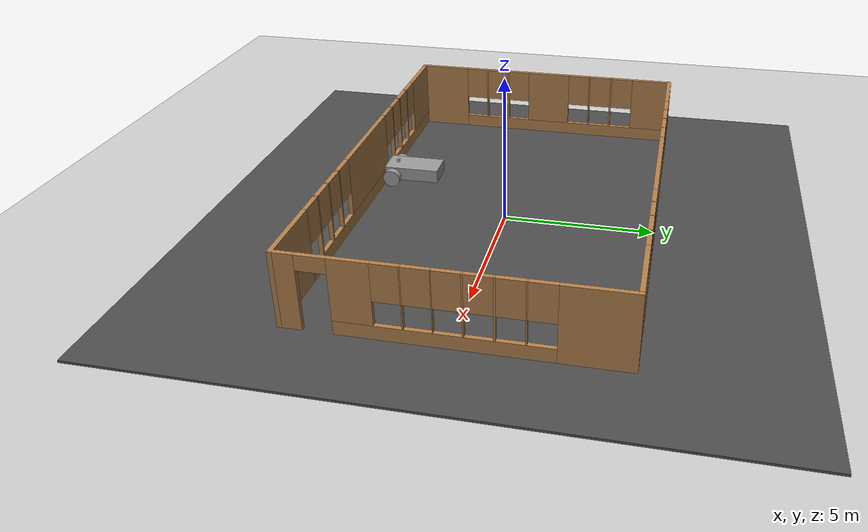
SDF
<sdf version="1.6">
 <world name="default">
  <model name="ground_plane">
   <static>1</static>
   <link name="link">
    <collision name="collision">
     <geometry><plane><normal>0 0 1</normal><size>100 100</size></plane></geometry>
     <surface><friction><ode><mu>100</mu><mu2>50</mu2></ode></friction></surface>
    </collision>
    <visual name="visual">
     <cast_shadows>0</cast_shadows>
     <geometry><plane><normal>0 0 1</normal><size>100 100</size></plane></geometry>
     <material>
      <script><uri>file://media/materials/scripts/gazebo.material</uri><name>Gazebo/Grey</name></script>
     </material>
    </visual>
   </link>
  </model>
  <model name="Building_Structure">
   <pose>-0.047768 0.076107 0 0 -0 0</pose>
   <link name="Wall_0">
    <pose>0 4.925 0 0 -0 0</pose>
    <visual name="Wall_0_Visual_0">
     <pose>-6.4786 0 1.25 0 -0 0</pose>
     <geometry><box><size>2.04279 0.15 2.5</size></box></geometry>
     <material>
      <script><uri>file://media/materials/scripts/gazebo.material</uri><name>Gazebo/Wood</name></script>
      <ambient>0.45098 0.823529 0.0862745 1</ambient>
     </material>
     <meta><layer>0</layer></meta>
    </visual>
    <collision name="Wall_0_Collision_0">
     <geometry><box><size>2.04279 0.15 2.5</size></box></geometry>
     <pose>-6.4786 0 1.25 0 -0 0</pose>
    </collision>
    <visual name="Wall_0_Visual_1">
     <pose>1.0214 0 0.25 0 -0 0</pose>
     <geometry><box><size>12.9572 0.15 0.5</size></box></geometry>
     <material>
      <script><uri>file://media/materials/scripts/gazebo.material</uri><name>Gazebo/Wood</name></script>
      <ambient>0.45098 0.823529 0.0862745 1</ambient>
     </material>
     <meta><layer>0</layer></meta>
    </visual>
    <collision name="Wall_0_Collision_1">
     <geometry><box><size>12.9572 0.15 0.5</size></box></geometry>
     <pose>1.0214 0 0.25 0 -0 0</pose>
    </collision>
    <visual name="Wall_0_Visual_2">
     <pose>-4.63981 0 1.5 0 -0 0</pose>
     <geometry><box><size>0.034782 0.15 2</size></box></geometry>
     <material>
      <script><uri>file://media/materials/scripts/gazebo.material</uri><name>Gazebo/Wood</name></script>
      <ambient>0.45098 0.823529 0.0862745 1</ambient>
     </material>
     <meta><layer>0</layer></meta>
    </visual>
    <collision name="Wall_0_Collision_2">
     <geometry><box><size>0.034782 0.15 2</size></box></geometry>
     <pose>-4.63981 0 1.5 0 -0 0</pose>
    </collision>
    <visual name="Wall_0_Visual_3">
     <pose>-3.80503 0 1.5 0 -0 0</pose>
     <geometry><box><size>0.034783 0.15 2</size></box></geometry>
     <material>
      <script><uri>file://media/materials/scripts/gazebo.material</uri><name>Gazebo/Wood</name></script>
      <ambient>0.45098 0.823529 0.0862745 1</ambient>
     </material>
     <meta><layer>0</layer></meta>
    </visual>
    <collision name="Wall_0_Collision_3">
     <geometry><box><size>0.034783 0.15 2</size></box></geometry>
     <pose>-3.80503 0 1.5 0 -0 0</pose>
    </collision>
    <visual name="Wall_0_Visual_4">
     <pose>-2.97025 0 1.5 0 -0 0</pose>
     <geometry><box><size>0.034783 0.15 2</size></box></geometry>
     <material>
      <script><uri>file://media/materials/scripts/gazebo.material</uri><name>Gazebo/Wood</name></script>
      <ambient>0.45098 0.823529 0.0862745 1</ambient>
     </material>
     <meta><layer>0</layer></meta>
    </visual>
    <collision name="Wall_0_Collision_4">
     <geometry><box><size>0.034783 0.15 2</size></box></geometry>
     <pose>-2.97025 0 1.5 0 -0 0</pose>
    </collision>
    <visual name="Wall_0_Visual_5">
     <pose>-0.209379 0 1.5 0 -0 0</pose>
     <geometry><box><size>3.88696 0.15 2</size></box></geometry>
     <material>
      <script><uri>file://media/materials/scripts/gazebo.material</uri><name>Gazebo/Wood</name></script>
      <ambient>0.45098 0.823529 0.0862745 1</ambient>
     </material>
     <meta><layer>0</layer></meta>
    </visual>
    <collision name="Wall_0_Collision_5">
     <geometry><box><size>3.88696 0.15 2</size></box></geometry>
     <pose>-0.209379 0 1.5 0 -0 0</pose>
    </collision>
    <visual name="Wall_0_Visual_6">
     <pose>2.56019 0 1.5 0 -0 0</pose>
     <geometry><box><size>0.052174 0.15 2</size></box></geometry>
     <material>
      <script><uri>file://media/materials/scripts/gazebo.material</uri><name>Gazebo/Wood</name></script>
      <ambient>0.45098 0.823529 0.0862745 1</ambient>
     </material>
     <meta><layer>0</layer></meta>
    </visual>
    <collision name="Wall_0_Collision_6">
     <geometry><box><size>0.052174 0.15 2</size></box></geometry>
     <pose>2.56019 0 1.5 0 -0 0</pose>
    </collision>
    <visual name="Wall_0_Visual_7">
     <pose>3.40801 0 1.5 0 -0 0</pose>
     <geometry><box><size>0.043478 0.15 2</size></box></geometry>
     <material>
      <script><uri>file://media/materials/scripts/gazebo.material</uri><name>Gazebo/Wood</name></script>
      <ambient>0.45098 0.823529 0.0862745 1</ambient>
     </material>
     <meta><layer>0</layer></meta>
    </visual>
    <collision name="Wall_0_Collision_7">
     <geometry><box><size>0.043478 0.15 2</size></box></geometry>
     <pose>3.40801 0 1.5 0 -0 0</pose>
    </collision>
    <visual name="Wall_0_Visual_8">
     <pose>4.25149 0 1.5 0 -0 0</pose>
     <geometry><box><size>0.043478 0.15 2</size></box></geometry>
     <material>
      <script><uri>file://media/materials/scripts/gazebo.material</uri><name>Gazebo/Wood</name></script>
      <ambient>0.45098 0.823529 0.0862745 1</ambient>
     </material>
     <meta><layer>0</layer></meta>
    </visual>
    <collision name="Wall_0_Collision_8">
     <geometry><box><size>0.043478 0.15 2</size></box></geometry>
     <pose>4.25149 0 1.5 0 -0 0</pose>
    </collision>
    <visual name="Wall_0_Visual_9">
     <pose>6.28662 0 1.5 0 -0 0</pose>
     <geometry><box><size>2.42677 0.15 2</size></box></geometry>
     <material>
      <script><uri>file://media/materials/scripts/gazebo.material</uri><name>Gazebo/Wood</name></script>
      <ambient>0.45098 0.823529 0.0862745 1</ambient>
     </material>
     <meta><layer>0</layer></meta>
    </visual>
    <collision name="Wall_0_Collision_9">
     <geometry><box><size>2.42677 0.15 2</size></box></geometry>
     <pose>6.28662 0 1.5 0 -0 0</pose>
    </collision>
    <visual name="Wall_0_Visual_10">
     <pose>-5.0572 0 1.9 0 -0 0</pose>
     <geometry><box><size>0.8 0.15 1.2</size></box></geometry>
     <material>
      <script><uri>file://media/materials/scripts/gazebo.material</uri><name>Gazebo/Wood</name></script>
      <ambient>0.45098 0.823529 0.0862745 1</ambient>
     </material>
     <meta><layer>0</layer></meta>
    </visual>
    <collision name="Wall_0_Collision_10">
     <geometry><box><size>0.8 0.15 1.2</size></box></geometry>
     <pose>-5.0572 0 1.9 0 -0 0</pose>
    </collision>
    <visual name="Wall_0_Visual_11">
     <pose>-4.22242 0 1.9 0 -0 0</pose>
     <geometry><box><size>0.8 0.15 1.2</size></box></geometry>
     <material>
      <script><uri>file://media/materials/scripts/gazebo.material</uri><name>Gazebo/Wood</name></script>
      <ambient>0.45098 0.823529 0.0862745 1</ambient>
     </material>
     <meta><layer>0</layer></meta>
    </visual>
    <collision name="Wall_0_Collision_11">
     <geometry><box><size>0.8 0.15 1.2</size></box></geometry>
     <pose>-4.22242 0 1.9 0 -0 0</pose>
    </collision>
    <visual name="Wall_0_Visual_12">
     <pose>-3.38764 0 1.9 0 -0 0</pose>
     <geometry><box><size>0.8 0.15 1.2</size></box></geometry>
     <material>
      <script><uri>file://media/materials/scripts/gazebo.material</uri><name>Gazebo/Wood</name></script>
      <ambient>0.45098 0.823529 0.0862745 1</ambient>
     </material>
     <meta><layer>0</layer></meta>
    </visual>
    <collision name="Wall_0_Collision_12">
     <geometry><box><size>0.8 0.15 1.2</size></box></geometry>
     <pose>-3.38764 0 1.9 0 -0 0</pose>
    </collision>
    <visual name="Wall_0_Visual_13">
     <pose>-2.55286 0 1.9 0 -0 0</pose>
     <geometry><box><size>0.8 0.15 1.2</size></box></geometry>
     <material>
      <script><uri>file://media/materials/scripts/gazebo.material</uri><name>Gazebo/Wood</name></script>
      <ambient>0.45098 0.823529 0.0862745 1</ambient>
     </material>
     <meta><layer>0</layer></meta>
    </visual>
    <collision name="Wall_0_Collision_13">
     <geometry><box><size>0.8 0.15 1.2</size></box></geometry>
     <pose>-2.55286 0 1.9 0 -0 0</pose>
    </collision>
    <visual name="Wall_0_Visual_14">
     <pose>2.1341 0 1.9 0 -0 0</pose>
     <geometry><box><size>0.8 0.15 1.2</size></box></geometry>
     <material>
      <script><uri>file://media/materials/scripts/gazebo.material</uri><name>Gazebo/Wood</name></script>
      <ambient>0.45098 0.823529 0.0862745 1</ambient>
     </material>
     <meta><layer>0</layer></meta>
    </visual>
    <collision name="Wall_0_Collision_14">
     <geometry><box><size>0.8 0.15 1.2</size></box></geometry>
     <pose>2.1341 0 1.9 0 -0 0</pose>
    </collision>
    <visual name="Wall_0_Visual_15">
     <pose>2.98627 0 1.9 0 -0 0</pose>
     <geometry><box><size>0.8 0.15 1.2</size></box></geometry>
     <material>
      <script><uri>file://media/materials/scripts/gazebo.material</uri><name>Gazebo/Wood</name></script>
      <ambient>0.45098 0.823529 0.0862745 1</ambient>
     </material>
     <meta><layer>0</layer></meta>
    </visual>
    <collision name="Wall_0_Collision_15">
     <geometry><box><size>0.8 0.15 1.2</size></box></geometry>
     <pose>2.98627 0 1.9 0 -0 0</pose>
    </collision>
    <visual name="Wall_0_Visual_16">
     <pose>3.82975 0 1.9 0 -0 0</pose>
     <geometry><box><size>0.8 0.15 1.2</size></box></geometry>
     <material>
      <script><uri>file://media/materials/scripts/gazebo.material</uri><name>Gazebo/Wood</name></script>
      <ambient>0.45098 0.823529 0.0862745 1</ambient>
     </material>
     <meta><layer>0</layer></meta>
    </visual>
    <collision name="Wall_0_Collision_16">
     <geometry><box><size>0.8 0.15 1.2</size></box></geometry>
     <pose>3.82975 0 1.9 0 -0 0</pose>
    </collision>
    <visual name="Wall_0_Visual_17">
     <pose>4.67323 0 1.9 0 -0 0</pose>
     <geometry><box><size>0.8 0.15 1.2</size></box></geometry>
     <material>
      <script><uri>file://media/materials/scripts/gazebo.material</uri><name>Gazebo/Wood</name></script>
      <ambient>0.45098 0.823529 0.0862745 1</ambient>
     </material>
     <meta><layer>0</layer></meta>
    </visual>
    <collision name="Wall_0_Collision_17">
     <geometry><box><size>0.8 0.15 1.2</size></box></geometry>
     <pose>4.67323 0 1.9 0 -0 0</pose>
    </collision>
   </link>
   <link name="Wall_1">
    <pose>7.425 0 0 0 -0 -1.5708</pose>
    <visual name="Wall_1_Visual_0">
     <pose>-3.93576 0 1.25 0 -0 0</pose>
     <geometry><box><size>2.12849 0.15 2.5</size></box></geometry>
     <material>
      <script><uri>file://media/materials/scripts/gazebo.material</uri><name>Gazebo/Wood</name></script>
      <ambient>1 1 1 1</ambient>
     </material>
     <meta><layer>0</layer></meta>
    </visual>
    <collision name="Wall_1_Collision_0">
     <geometry><box><size>2.12849 0.15 2.5</size></box></geometry>
     <pose>-3.93576 0 1.25 0 -0 0</pose>
    </collision>
    <visual name="Wall_1_Visual_1">
     <pose>4.62424 0 1.25 0 -0 0</pose>
     <geometry><box><size>0.751513 0.15 2.5</size></box></geometry>
     <material>
      <script><uri>file://media/materials/scripts/gazebo.material</uri><name>Gazebo/Wood</name></script>
      <ambient>1 1 1 1</ambient>
     </material>
     <meta><layer>0</layer></meta>
    </visual>
    <collision name="Wall_1_Collision_1">
     <geometry><box><size>0.751513 0.15 2.5</size></box></geometry>
     <pose>4.62424 0 1.25 0 -0 0</pose>
    </collision>
    <visual name="Wall_1_Visual_2">
     <pose>0.238487 0 0.25 0 -0 0</pose>
     <geometry><box><size>6.22 0.15 0.5</size></box></geometry>
     <material>
      <script><uri>file://media/materials/scripts/gazebo.material</uri><name>Gazebo/Wood</name></script>
      <ambient>1 1 1 1</ambient>
     </material>
     <meta><layer>0</layer></meta>
    </visual>
    <collision name="Wall_1_Collision_2">
     <geometry><box><size>6.22 0.15 0.5</size></box></geometry>
     <pose>0.238487 0 0.25 0 -0 0</pose>
    </collision>
    <visual name="Wall_1_Visual_3">
     <pose>-2.05151 0 1.5 0 -0 0</pose>
     <geometry><box><size>0.04 0.15 2</size></box></geometry>
     <material>
      <script><uri>file://media/materials/scripts/gazebo.material</uri><name>Gazebo/Wood</name></script>
      <ambient>1 1 1 1</ambient>
     </material>
     <meta><layer>0</layer></meta>
    </visual>
    <collision name="Wall_1_Collision_3">
     <geometry><box><size>0.04 0.15 2</size></box></geometry>
     <pose>-2.05151 0 1.5 0 -0 0</pose>
    </collision>
    <visual name="Wall_1_Visual_4">
     <pose>-1.20151 0 1.5 0 -0 0</pose>
     <geometry><box><size>0.06 0.15 2</size></box></geometry>
     <material>
      <script><uri>file://media/materials/scripts/gazebo.material</uri><name>Gazebo/Wood</name></script>
      <ambient>1 1 1 1</ambient>
     </material>
     <meta><layer>0</layer></meta>
    </visual>
    <collision name="Wall_1_Collision_4">
     <geometry><box><size>0.06 0.15 2</size></box></geometry>
     <pose>-1.20151 0 1.5 0 -0 0</pose>
    </collision>
    <visual name="Wall_1_Visual_5">
     <pose>-0.346514 0 1.5 0 -0 0</pose>
     <geometry><box><size>0.05 0.15 2</size></box></geometry>
     <material>
      <script><uri>file://media/materials/scripts/gazebo.material</uri><name>Gazebo/Wood</name></script>
      <ambient>1 1 1 1</ambient>
     </material>
     <meta><layer>0</layer></meta>
    </visual>
    <collision name="Wall_1_Collision_5">
     <geometry><box><size>0.05 0.15 2</size></box></geometry>
     <pose>-0.346514 0 1.5 0 -0 0</pose>
    </collision>
    <visual name="Wall_1_Visual_6">
     <pose>0.493487 0 1.5 0 -0 0</pose>
     <geometry><box><size>0.03 0.15 2</size></box></geometry>
     <material>
      <script><uri>file://media/materials/scripts/gazebo.material</uri><name>Gazebo/Wood</name></script>
      <ambient>1 1 1 1</ambient>
     </material>
     <meta><layer>0</layer></meta>
    </visual>
    <collision name="Wall_1_Collision_6">
     <geometry><box><size>0.03 0.15 2</size></box></geometry>
     <pose>0.493487 0 1.5 0 -0 0</pose>
    </collision>
    <visual name="Wall_1_Visual_7">
     <pose>1.32849 0 1.5 0 -0 0</pose>
     <geometry><box><size>0.04 0.15 2</size></box></geometry>
     <material>
      <script><uri>file://media/materials/scripts/gazebo.material</uri><name>Gazebo/Wood</name></script>
      <ambient>1 1 1 1</ambient>
     </material>
     <meta><layer>0</layer></meta>
    </visual>
    <collision name="Wall_1_Collision_7">
     <geometry><box><size>0.04 0.15 2</size></box></geometry>
     <pose>1.32849 0 1.5 0 -0 0</pose>
    </collision>
    <visual name="Wall_1_Visual_8">
     <pose>2.74849 0 1.5 0 -0 0</pose>
     <geometry><box><size>1.2 0.15 2</size></box></geometry>
     <material>
      <script><uri>file://media/materials/scripts/gazebo.material</uri><name>Gazebo/Wood</name></script>
      <ambient>1 1 1 1</ambient>
     </material>
     <meta><layer>0</layer></meta>
    </visual>
    <collision name="Wall_1_Collision_8">
     <geometry><box><size>1.2 0.15 2</size></box></geometry>
     <pose>2.74849 0 1.5 0 -0 0</pose>
    </collision>
    <visual name="Wall_1_Visual_9">
     <pose>-2.47151 0 1.9 0 -0 0</pose>
     <geometry><box><size>0.8 0.15 1.2</size></box></geometry>
     <material>
      <script><uri>file://media/materials/scripts/gazebo.material</uri><name>Gazebo/Wood</name></script>
      <ambient>1 1 1 1</ambient>
     </material>
     <meta><layer>0</layer></meta>
    </visual>
    <collision name="Wall_1_Collision_9">
     <geometry><box><size>0.8 0.15 1.2</size></box></geometry>
     <pose>-2.47151 0 1.9 0 -0 0</pose>
    </collision>
    <visual name="Wall_1_Visual_10">
     <pose>-1.63151 0 1.9 0 -0 0</pose>
     <geometry><box><size>0.8 0.15 1.2</size></box></geometry>
     <material>
      <script><uri>file://media/materials/scripts/gazebo.material</uri><name>Gazebo/Wood</name></script>
      <ambient>1 1 1 1</ambient>
     </material>
     <meta><layer>0</layer></meta>
    </visual>
    <collision name="Wall_1_Collision_10">
     <geometry><box><size>0.8 0.15 1.2</size></box></geometry>
     <pose>-1.63151 0 1.9 0 -0 0</pose>
    </collision>
    <visual name="Wall_1_Visual_11">
     <pose>-0.771513 0 1.9 0 -0 0</pose>
     <geometry><box><size>0.8 0.15 1.2</size></box></geometry>
     <material>
      <script><uri>file://media/materials/scripts/gazebo.material</uri><name>Gazebo/Wood</name></script>
      <ambient>1 1 1 1</ambient>
     </material>
     <meta><layer>0</layer></meta>
    </visual>
    <collision name="Wall_1_Collision_11">
     <geometry><box><size>0.8 0.15 1.2</size></box></geometry>
     <pose>-0.771513 0 1.9 0 -0 0</pose>
    </collision>
    <visual name="Wall_1_Visual_12">
     <pose>0.078486 0 1.9 0 -0 0</pose>
     <geometry><box><size>0.8 0.15 1.2</size></box></geometry>
     <material>
      <script><uri>file://media/materials/scripts/gazebo.material</uri><name>Gazebo/Wood</name></script>
      <ambient>1 1 1 1</ambient>
     </material>
     <meta><layer>0</layer></meta>
    </visual>
    <collision name="Wall_1_Collision_12">
     <geometry><box><size>0.8 0.15 1.2</size></box></geometry>
     <pose>0.078486 0 1.9 0 -0 0</pose>
    </collision>
    <visual name="Wall_1_Visual_13">
     <pose>0.908487 0 1.9 0 -0 0</pose>
     <geometry><box><size>0.8 0.15 1.2</size></box></geometry>
     <material>
      <script><uri>file://media/materials/scripts/gazebo.material</uri><name>Gazebo/Wood</name></script>
      <ambient>1 1 1 1</ambient>
     </material>
     <meta><layer>0</layer></meta>
    </visual>
    <collision name="Wall_1_Collision_13">
     <geometry><box><size>0.8 0.15 1.2</size></box></geometry>
     <pose>0.908487 0 1.9 0 -0 0</pose>
    </collision>
    <visual name="Wall_1_Visual_14">
     <pose>1.74849 0 1.9 0 -0 0</pose>
     <geometry><box><size>0.8 0.15 1.2</size></box></geometry>
     <material>
      <script><uri>file://media/materials/scripts/gazebo.material</uri><name>Gazebo/Wood</name></script>
      <ambient>1 1 1 1</ambient>
     </material>
     <meta><layer>0</layer></meta>
    </visual>
    <collision name="Wall_1_Collision_14">
     <geometry><box><size>0.8 0.15 1.2</size></box></geometry>
     <pose>1.74849 0 1.9 0 -0 0</pose>
    </collision>
    <visual name="Wall_1_Visual_15">
     <pose>3.79849 0 2.25 0 -0 0</pose>
     <geometry><box><size>0.9 0.15 0.5</size></box></geometry>
     <material>
      <script><uri>file://media/materials/scripts/gazebo.material</uri><name>Gazebo/Wood</name></script>
      <ambient>1 1 1 1</ambient>
     </material>
     <meta><layer>0</layer></meta>
    </visual>
    <collision name="Wall_1_Collision_15">
     <geometry><box><size>0.9 0.15 0.5</size></box></geometry>
     <pose>3.79849 0 2.25 0 -0 0</pose>
    </collision>
   </link>
   <link name="Wall_2">
    <pose>0 -4.925 0 0 -0 3.14159</pose>
    <visual name="Wall_2_Visual_0">
     <pose>-6.2957 0 1.25 0 -0 0</pose>
     <geometry><box><size>2.4086 0.15 2.5</size></box></geometry>
     <material>
      <script><uri>file://media/materials/scripts/gazebo.material</uri><name>Gazebo/Wood</name></script>
      <ambient>0.45098 0.823529 0.0862745 1</ambient>
     </material>
     <meta><layer>0</layer></meta>
    </visual>
    <collision name="Wall_2_Collision_0">
     <geometry><box><size>2.4086 0.15 2.5</size></box></geometry>
     <pose>-6.2957 0 1.25 0 -0 0</pose>
    </collision>
    <visual name="Wall_2_Visual_1">
     <pose>1.2043 0 0.25 0 -0 0</pose>
     <geometry><box><size>12.5914 0.15 0.5</size></box></geometry>
     <material>
      <script><uri>file://media/materials/scripts/gazebo.material</uri><name>Gazebo/Wood</name></script>
      <ambient>0.45098 0.823529 0.0862745 1</ambient>
     </material>
     <meta><layer>0</layer></meta>
    </visual>
    <collision name="Wall_2_Collision_1">
     <geometry><box><size>12.5914 0.15 0.5</size></box></geometry>
     <pose>1.2043 0 0.25 0 -0 0</pose>
    </collision>
    <visual name="Wall_2_Visual_2">
     <pose>-4.25752 0 1.5 0 -0 0</pose>
     <geometry><box><size>0.06776 0.15 2</size></box></geometry>
     <material>
      <script><uri>file://media/materials/scripts/gazebo.material</uri><name>Gazebo/Wood</name></script>
      <ambient>0.45098 0.823529 0.0862745 1</ambient>
     </material>
     <meta><layer>0</layer></meta>
    </visual>
    <collision name="Wall_2_Collision_2">
     <geometry><box><size>0.06776 0.15 2</size></box></geometry>
     <pose>-4.25752 0 1.5 0 -0 0</pose>
    </collision>
    <visual name="Wall_2_Visual_3">
     <pose>-3.38886 0 1.5 0 -0 0</pose>
     <geometry><box><size>0.069565 0.15 2</size></box></geometry>
     <material>
      <script><uri>file://media/materials/scripts/gazebo.material</uri><name>Gazebo/Wood</name></script>
      <ambient>0.45098 0.823529 0.0862745 1</ambient>
     </material>
     <meta><layer>0</layer></meta>
    </visual>
    <collision name="Wall_2_Collision_3">
     <geometry><box><size>0.069565 0.15 2</size></box></geometry>
     <pose>-3.38886 0 1.5 0 -0 0</pose>
    </collision>
    <visual name="Wall_2_Visual_4">
     <pose>-2.52308 0 1.5 0 -0 0</pose>
     <geometry><box><size>0.062004 0.15 2</size></box></geometry>
     <material>
      <script><uri>file://media/materials/scripts/gazebo.material</uri><name>Gazebo/Wood</name></script>
      <ambient>0.45098 0.823529 0.0862745 1</ambient>
     </material>
     <meta><layer>0</layer></meta>
    </visual>
    <collision name="Wall_2_Collision_4">
     <geometry><box><size>0.062004 0.15 2</size></box></geometry>
     <pose>-2.52308 0 1.5 0 -0 0</pose>
    </collision>
    <visual name="Wall_2_Visual_5">
     <pose>0.164065 0 1.5 0 -0 0</pose>
     <geometry><box><size>3.71228 0.15 2</size></box></geometry>
     <material>
      <script><uri>file://media/materials/scripts/gazebo.material</uri><name>Gazebo/Wood</name></script>
      <ambient>0.45098 0.823529 0.0862745 1</ambient>
     </material>
     <meta><layer>0</layer></meta>
    </visual>
    <collision name="Wall_2_Collision_5">
     <geometry><box><size>3.71228 0.15 2</size></box></geometry>
     <pose>0.164065 0 1.5 0 -0 0</pose>
    </collision>
    <visual name="Wall_2_Visual_6">
     <pose>2.84759 0 1.5 0 -0 0</pose>
     <geometry><box><size>0.054771 0.15 2</size></box></geometry>
     <material>
      <script><uri>file://media/materials/scripts/gazebo.material</uri><name>Gazebo/Wood</name></script>
      <ambient>0.45098 0.823529 0.0862745 1</ambient>
     </material>
     <meta><layer>0</layer></meta>
    </visual>
    <collision name="Wall_2_Collision_6">
     <geometry><box><size>0.054771 0.15 2</size></box></geometry>
     <pose>2.84759 0 1.5 0 -0 0</pose>
    </collision>
    <visual name="Wall_2_Visual_7">
     <pose>3.70236 0 1.5 0 -0 0</pose>
     <geometry><box><size>0.054771 0.15 2</size></box></geometry>
     <material>
      <script><uri>file://media/materials/scripts/gazebo.material</uri><name>Gazebo/Wood</name></script>
      <ambient>0.45098 0.823529 0.0862745 1</ambient>
     </material>
     <meta><layer>0</layer></meta>
    </visual>
    <collision name="Wall_2_Collision_7">
     <geometry><box><size>0.054771 0.15 2</size></box></geometry>
     <pose>3.70236 0 1.5 0 -0 0</pose>
    </collision>
    <visual name="Wall_2_Visual_8">
     <pose>4.56045 0 1.5 0 -0 0</pose>
     <geometry><box><size>0.06141 0.15 2</size></box></geometry>
     <material>
      <script><uri>file://media/materials/scripts/gazebo.material</uri><name>Gazebo/Wood</name></script>
      <ambient>0.45098 0.823529 0.0862745 1</ambient>
     </material>
     <meta><layer>0</layer></meta>
    </visual>
    <collision name="Wall_2_Collision_8">
     <geometry><box><size>0.06141 0.15 2</size></box></geometry>
     <pose>4.56045 0 1.5 0 -0 0</pose>
    </collision>
    <visual name="Wall_2_Visual_9">
     <pose>6.44558 0 1.5 0 -0 0</pose>
     <geometry><box><size>2.10884 0.15 2</size></box></geometry>
     <material>
      <script><uri>file://media/materials/scripts/gazebo.material</uri><name>Gazebo/Wood</name></script>
      <ambient>0.45098 0.823529 0.0862745 1</ambient>
     </material>
     <meta><layer>0</layer></meta>
    </visual>
    <collision name="Wall_2_Collision_9">
     <geometry><box><size>2.10884 0.15 2</size></box></geometry>
     <pose>6.44558 0 1.5 0 -0 0</pose>
    </collision>
    <visual name="Wall_2_Visual_10">
     <pose>-4.6914 0 1.9 0 -0 0</pose>
     <geometry><box><size>0.8 0.15 1.2</size></box></geometry>
     <material>
      <script><uri>file://media/materials/scripts/gazebo.material</uri><name>Gazebo/Wood</name></script>
      <ambient>0.45098 0.823529 0.0862745 1</ambient>
     </material>
     <meta><layer>0</layer></meta>
    </visual>
    <collision name="Wall_2_Collision_10">
     <geometry><box><size>0.8 0.15 1.2</size></box></geometry>
     <pose>-4.6914 0 1.9 0 -0 0</pose>
    </collision>
    <visual name="Wall_2_Visual_11">
     <pose>-3.82364 0 1.9 0 -0 0</pose>
     <geometry><box><size>0.8 0.15 1.2</size></box></geometry>
     <material>
      <script><uri>file://media/materials/scripts/gazebo.material</uri><name>Gazebo/Wood</name></script>
      <ambient>0.45098 0.823529 0.0862745 1</ambient>
     </material>
     <meta><layer>0</layer></meta>
    </visual>
    <collision name="Wall_2_Collision_11">
     <geometry><box><size>0.8 0.15 1.2</size></box></geometry>
     <pose>-3.82364 0 1.9 0 -0 0</pose>
    </collision>
    <visual name="Wall_2_Visual_12">
     <pose>-2.95408 0 1.9 0 -0 0</pose>
     <geometry><box><size>0.8 0.15 1.2</size></box></geometry>
     <material>
      <script><uri>file://media/materials/scripts/gazebo.material</uri><name>Gazebo/Wood</name></script>
      <ambient>0.45098 0.823529 0.0862745 1</ambient>
     </material>
     <meta><layer>0</layer></meta>
    </visual>
    <collision name="Wall_2_Collision_12">
     <geometry><box><size>0.8 0.15 1.2</size></box></geometry>
     <pose>-2.95408 0 1.9 0 -0 0</pose>
    </collision>
    <visual name="Wall_2_Visual_13">
     <pose>-2.09207 0 1.9 0 -0 0</pose>
     <geometry><box><size>0.8 0.15 1.2</size></box></geometry>
     <material>
      <script><uri>file://media/materials/scripts/gazebo.material</uri><name>Gazebo/Wood</name></script>
      <ambient>0.45098 0.823529 0.0862745 1</ambient>
     </material>
     <meta><layer>0</layer></meta>
    </visual>
    <collision name="Wall_2_Collision_13">
     <geometry><box><size>0.8 0.15 1.2</size></box></geometry>
     <pose>-2.09207 0 1.9 0 -0 0</pose>
    </collision>
    <visual name="Wall_2_Visual_14">
     <pose>2.42021 0 1.9 0 -0 0</pose>
     <geometry><box><size>0.8 0.15 1.2</size></box></geometry>
     <material>
      <script><uri>file://media/materials/scripts/gazebo.material</uri><name>Gazebo/Wood</name></script>
      <ambient>0.45098 0.823529 0.0862745 1</ambient>
     </material>
     <meta><layer>0</layer></meta>
    </visual>
    <collision name="Wall_2_Collision_14">
     <geometry><box><size>0.8 0.15 1.2</size></box></geometry>
     <pose>2.42021 0 1.9 0 -0 0</pose>
    </collision>
    <visual name="Wall_2_Visual_15">
     <pose>3.27498 0 1.9 0 -0 0</pose>
     <geometry><box><size>0.8 0.15 1.2</size></box></geometry>
     <material>
      <script><uri>file://media/materials/scripts/gazebo.material</uri><name>Gazebo/Wood</name></script>
      <ambient>0.45098 0.823529 0.0862745 1</ambient>
     </material>
     <meta><layer>0</layer></meta>
    </visual>
    <collision name="Wall_2_Collision_15">
     <geometry><box><size>0.8 0.15 1.2</size></box></geometry>
     <pose>3.27498 0 1.9 0 -0 0</pose>
    </collision>
    <visual name="Wall_2_Visual_16">
     <pose>4.12975 0 1.9 0 -0 0</pose>
     <geometry><box><size>0.8 0.15 1.2</size></box></geometry>
     <material>
      <script><uri>file://media/materials/scripts/gazebo.material</uri><name>Gazebo/Wood</name></script>
      <ambient>0.45098 0.823529 0.0862745 1</ambient>
     </material>
     <meta><layer>0</layer></meta>
    </visual>
    <collision name="Wall_2_Collision_16">
     <geometry><box><size>0.8 0.15 1.2</size></box></geometry>
     <pose>4.12975 0 1.9 0 -0 0</pose>
    </collision>
    <visual name="Wall_2_Visual_17">
     <pose>4.99116 0 1.9 0 -0 0</pose>
     <geometry><box><size>0.8 0.15 1.2</size></box></geometry>
     <material>
      <script><uri>file://media/materials/scripts/gazebo.material</uri><name>Gazebo/Wood</name></script>
      <ambient>0.45098 0.823529 0.0862745 1</ambient>
     </material>
     <meta><layer>0</layer></meta>
    </visual>
    <collision name="Wall_2_Collision_17">
     <geometry><box><size>0.8 0.15 1.2</size></box></geometry>
     <pose>4.99116 0 1.9 0 -0 0</pose>
    </collision>
   </link>
   <link name="Wall_3">
    <pose>-7.425 0 0 0 -0 1.5708</pose>
    <visual name="Wall_3_Visual_0">
     <pose>-4.06711 0 1.25 0 -0 0</pose>
     <geometry><box><size>1.86578 0.15 2.5</size></box></geometry>
     <material>
      <script><uri>file://media/materials/scripts/gazebo.material</uri><name>Gazebo/Wood</name></script>
      <ambient>0.45098 0.823529 0.0862745 1</ambient>
     </material>
     <meta><layer>0</layer></meta>
    </visual>
    <collision name="Wall_3_Collision_0">
     <geometry><box><size>1.86578 0.15 2.5</size></box></geometry>
     <pose>-4.06711 0 1.25 0 -0 0</pose>
    </collision>
    <visual name="Wall_3_Visual_1">
     <pose>0.932889 0 0.25 0 -0 0</pose>
     <geometry><box><size>8.13422 0.15 0.5</size></box></geometry>
     <material>
      <script><uri>file://media/materials/scripts/gazebo.material</uri><name>Gazebo/Wood</name></script>
      <ambient>0.45098 0.823529 0.0862745 1</ambient>
     </material>
     <meta><layer>0</layer></meta>
    </visual>
    <collision name="Wall_3_Collision_1">
     <geometry><box><size>8.13422 0.15 0.5</size></box></geometry>
     <pose>0.932889 0 0.25 0 -0 0</pose>
    </collision>
    <visual name="Wall_3_Visual_2">
     <pose>-2.30541 0 1.5 0 -0 0</pose>
     <geometry><box><size>0.05763 0.15 2</size></box></geometry>
     <material>
      <script><uri>file://media/materials/scripts/gazebo.material</uri><name>Gazebo/Wood</name></script>
      <ambient>0.45098 0.823529 0.0862745 1</ambient>
     </material>
     <meta><layer>0</layer></meta>
    </visual>
    <collision name="Wall_3_Collision_2">
     <geometry><box><size>0.05763 0.15 2</size></box></geometry>
     <pose>-2.30541 0 1.5 0 -0 0</pose>
    </collision>
    <visual name="Wall_3_Visual_3">
     <pose>-1.44206 0 1.5 0 -0 0</pose>
     <geometry><box><size>0.069065 0.15 2</size></box></geometry>
     <material>
      <script><uri>file://media/materials/scripts/gazebo.material</uri><name>Gazebo/Wood</name></script>
      <ambient>0.45098 0.823529 0.0862745 1</ambient>
     </material>
     <meta><layer>0</layer></meta>
    </visual>
    <collision name="Wall_3_Collision_3">
     <geometry><box><size>0.069065 0.15 2</size></box></geometry>
     <pose>-1.44206 0 1.5 0 -0 0</pose>
    </collision>
    <visual name="Wall_3_Visual_4">
     <pose>0.198872 0 1.5 0 -0 0</pose>
     <geometry><box><size>1.6128 0.15 2</size></box></geometry>
     <material>
      <script><uri>file://media/materials/scripts/gazebo.material</uri><name>Gazebo/Wood</name></script>
      <ambient>0.45098 0.823529 0.0862745 1</ambient>
     </material>
     <meta><layer>0</layer></meta>
    </visual>
    <collision name="Wall_3_Collision_4">
     <geometry><box><size>1.6128 0.15 2</size></box></geometry>
     <pose>0.198872 0 1.5 0 -0 0</pose>
    </collision>
    <visual name="Wall_3_Visual_5">
     <pose>1.82837 0 1.5 0 -0 0</pose>
     <geometry><box><size>0.046195 0.15 2</size></box></geometry>
     <material>
      <script><uri>file://media/materials/scripts/gazebo.material</uri><name>Gazebo/Wood</name></script>
      <ambient>0.45098 0.823529 0.0862745 1</ambient>
     </material>
     <meta><layer>0</layer></meta>
    </visual>
    <collision name="Wall_3_Collision_5">
     <geometry><box><size>0.046195 0.15 2</size></box></geometry>
     <pose>1.82837 0 1.5 0 -0 0</pose>
    </collision>
    <visual name="Wall_3_Visual_6">
     <pose>2.68028 0 1.5 0 -0 0</pose>
     <geometry><box><size>0.05763 0.15 2</size></box></geometry>
     <material>
      <script><uri>file://media/materials/scripts/gazebo.material</uri><name>Gazebo/Wood</name></script>
      <ambient>0.45098 0.823529 0.0862745 1</ambient>
     </material>
     <meta><layer>0</layer></meta>
    </visual>
    <collision name="Wall_3_Collision_6">
     <geometry><box><size>0.05763 0.15 2</size></box></geometry>
     <pose>2.68028 0 1.5 0 -0 0</pose>
    </collision>
    <visual name="Wall_3_Visual_7">
     <pose>4.25455 0 1.5 0 -0 0</pose>
     <geometry><box><size>1.4909 0.15 2</size></box></geometry>
     <material>
      <script><uri>file://media/materials/scripts/gazebo.material</uri><name>Gazebo/Wood</name></script>
      <ambient>0.45098 0.823529 0.0862745 1</ambient>
     </material>
     <meta><layer>0</layer></meta>
    </visual>
    <collision name="Wall_3_Collision_7">
     <geometry><box><size>1.4909 0.15 2</size></box></geometry>
     <pose>4.25455 0 1.5 0 -0 0</pose>
    </collision>
    <visual name="Wall_3_Visual_8">
     <pose>-2.73422 0 1.9 0 -0 0</pose>
     <geometry><box><size>0.8 0.15 1.2</size></box></geometry>
     <material>
      <script><uri>file://media/materials/scripts/gazebo.material</uri><name>Gazebo/Wood</name></script>
      <ambient>0.45098 0.823529 0.0862745 1</ambient>
     </material>
     <meta><layer>0</layer></meta>
    </visual>
    <collision name="Wall_3_Collision_8">
     <geometry><box><size>0.8 0.15 1.2</size></box></geometry>
     <pose>-2.73422 0 1.9 0 -0 0</pose>
    </collision>
    <visual name="Wall_3_Visual_9">
     <pose>-1.87659 0 1.9 0 -0 0</pose>
     <geometry><box><size>0.8 0.15 1.2</size></box></geometry>
     <material>
      <script><uri>file://media/materials/scripts/gazebo.material</uri><name>Gazebo/Wood</name></script>
      <ambient>0.45098 0.823529 0.0862745 1</ambient>
     </material>
     <meta><layer>0</layer></meta>
    </visual>
    <collision name="Wall_3_Collision_9">
     <geometry><box><size>0.8 0.15 1.2</size></box></geometry>
     <pose>-1.87659 0 1.9 0 -0 0</pose>
    </collision>
    <visual name="Wall_3_Visual_10">
     <pose>-1.00753 0 1.9 0 -0 0</pose>
     <geometry><box><size>0.8 0.15 1.2</size></box></geometry>
     <material>
      <script><uri>file://media/materials/scripts/gazebo.material</uri><name>Gazebo/Wood</name></script>
      <ambient>0.45098 0.823529 0.0862745 1</ambient>
     </material>
     <meta><layer>0</layer></meta>
    </visual>
    <collision name="Wall_3_Collision_10">
     <geometry><box><size>0.8 0.15 1.2</size></box></geometry>
     <pose>-1.00753 0 1.9 0 -0 0</pose>
    </collision>
    <visual name="Wall_3_Visual_11">
     <pose>1.40527 0 1.9 0 -0 0</pose>
     <geometry><box><size>0.8 0.15 1.2</size></box></geometry>
     <material>
      <script><uri>file://media/materials/scripts/gazebo.material</uri><name>Gazebo/Wood</name></script>
      <ambient>0.45098 0.823529 0.0862745 1</ambient>
     </material>
     <meta><layer>0</layer></meta>
    </visual>
    <collision name="Wall_3_Collision_11">
     <geometry><box><size>0.8 0.15 1.2</size></box></geometry>
     <pose>1.40527 0 1.9 0 -0 0</pose>
    </collision>
    <visual name="Wall_3_Visual_12">
     <pose>2.25147 0 1.9 0 -0 0</pose>
     <geometry><box><size>0.8 0.15 1.2</size></box></geometry>
     <material>
      <script><uri>file://media/materials/scripts/gazebo.material</uri><name>Gazebo/Wood</name></script>
      <ambient>0.45098 0.823529 0.0862745 1</ambient>
     </material>
     <meta><layer>0</layer></meta>
    </visual>
    <collision name="Wall_3_Collision_12">
     <geometry><box><size>0.8 0.15 1.2</size></box></geometry>
     <pose>2.25147 0 1.9 0 -0 0</pose>
    </collision>
    <visual name="Wall_3_Visual_13">
     <pose>3.1091 0 1.9 0 -0 0</pose>
     <geometry><box><size>0.8 0.15 1.2</size></box></geometry>
     <material>
      <script><uri>file://media/materials/scripts/gazebo.material</uri><name>Gazebo/Wood</name></script>
      <ambient>0.45098 0.823529 0.0862745 1</ambient>
     </material>
     <meta><layer>0</layer></meta>
    </visual>
    <collision name="Wall_3_Collision_13">
     <geometry><box><size>0.8 0.15 1.2</size></box></geometry>
     <pose>3.1091 0 1.9 0 -0 0</pose>
    </collision>
   </link>
   <static>1</static>
  </model>
  <model name="asphalt_plane">
   <static>1</static>
   <link name="link">
    <collision name="collision"><geometry><box><size>20 20 0.1</size></box></geometry></collision>
    <visual name="visual">
     <cast_shadows>0</cast_shadows>
     <geometry><box><size>20 20 0.1</size></box></geometry>
     <material>
      <script>
       <uri>model://asphalt_plane/materials/scripts</uri>
       <uri>model://asphalt_plane/materials/textures</uri>
       <name>vrc/asphalt</name>
      </script>
     </material>
    </visual>
   </link>
   <pose>0.008953 0.016686 0 0 -0 0</pose>
  </model>
  <model name="Robot_Structure_1">
   <link name="link">
    <inertial>
     <mass>1</mass>
     <inertia>
      <ixx>0.166667</ixx>
      <ixy>0</ixy>
      <ixz>0</ixz>
      <iyy>0.166667</iyy>
      <iyz>0</iyz>
      <izz>0.166667</izz>
     </inertia>
    </inertial>
    <pose>0 0 0.4 0 -0 0</pose>
    <visual name="visual">
     <geometry><box><size>1.94174 1 0.456116</size></box></geometry>
     <material>
      <script><name>Gazebo/Grey</name><uri>file://media/materials/scripts/gazebo.material</uri></script>
      <shader type="vertex"><normal_map>__default__</normal_map></shader>
      <ambient>0.3 0.3 0.3 1</ambient>
      <diffuse>0.7 0.7 0.7 1</diffuse>
      <specular>0.01 0.01 0.01 1</specular>
      <emissive>0 0 0 1</emissive>
     </material>
    </visual>
    <collision name="collision">
     <geometry><box><size>1.94174 1 0.456116</size></box></geometry>
     <surface>
      <friction>
       <ode><mu>1</mu><mu2>1</mu2><fdir1>0 0 0</fdir1><slip1>0</slip1><slip2>0</slip2></ode>
       <torsional>
        <coefficient>1</coefficient>
        <patch_radius>0</patch_radius>
        <surface_radius>0</surface_radius>
        <use_patch_radius>1</use_patch_radius>
        <ode><slip>0</slip></ode>
       </torsional>
      </friction>
      <bounce><restitution_coefficient>0</restitution_coefficient><threshold>1e+06</threshold></bounce>
      <contact>
       <collide_without_contact>0</collide_without_contact>
       <collide_without_contact_bitmask>1</collide_without_contact_bitmask>
       <collide_bitmask>1</collide_bitmask>
       <ode>
        <soft_cfm>0</soft_cfm>
        <soft_erp>0.2</soft_erp>
        <kp>1e+13</kp>
        <kd>1</kd>
        <max_vel>0.01</max_vel>
        <min_depth>0</min_depth>
       </ode>
       <bullet>
        <split_impulse>1</split_impulse>
        <split_impulse_penetration_threshold>-0.01</split_impulse_penetration_threshold>
        <soft_cfm>0</soft_cfm>
        <soft_erp>0.2</soft_erp>
        <kp>1e+13</kp>
        <kd>1</kd>
       </bullet>
      </contact>
     </surface>
    </collision>
   </link>
   <link name="link_0">
    <inertial>
     <mass>1</mass>
     <inertia><ixx>0.145833</ixx><ixy>0</ixy><ixz>0</ixz><iyy>0.145833</iyy><iyz>0</iyz><izz>0.125</izz></inertia>
    </inertial>
    <pose>0.67087 0.640029 0.3 1.5707 -0 0</pose>
    <visual name="visual">
     <geometry><cylinder><radius>0.3</radius><length>0.25</length></cylinder></geometry>
     <material>
      <lighting>1</lighting>
      <script><uri>file://media/materials/scripts/gazebo.material</uri><name>Gazebo/Grey</name></script>
      <shader type="vertex"><normal_map>__default__</normal_map></shader>
      <ambient>0.3 0.3 0.3 1</ambient>
      <diffuse>0.7 0.7 0.7 1</diffuse>
      <specular>0.01 0.01 0.01 1</specular>
      <emissive>0 0 0 1</emissive>
     </material>
    </visual>
    <collision name="collision">
     <geometry><cylinder><radius>0.3</radius><length>0.25</length></cylinder></geometry>
     <surface>
      <friction>
       <ode><mu>1</mu><mu2>1</mu2><fdir1>0 0 0</fdir1><slip1>0</slip1><slip2>0</slip2></ode>
       <torsional>
        <coefficient>1</coefficient>
        <patch_radius>0</patch_radius>
        <surface_radius>0</surface_radius>
        <use_patch_radius>1</use_patch_radius>
        <ode><slip>0</slip></ode>
       </torsional>
      </friction>
      <bounce><restitution_coefficient>0</restitution_coefficient><threshold>1e+06</threshold></bounce>
      <contact>
       <collide_without_contact>0</collide_without_contact>
       <collide_without_contact_bitmask>1</collide_without_contact_bitmask>
       <collide_bitmask>1</collide_bitmask>
       <ode>
        <soft_cfm>0</soft_cfm>
        <soft_erp>0.2</soft_erp>
        <kp>1e+13</kp>
        <kd>1</kd>
        <max_vel>0.01</max_vel>
        <min_depth>0</min_depth>
       </ode>
       <bullet>
        <split_impulse>1</split_impulse>
        <split_impulse_penetration_threshold>-0.01</split_impulse_penetration_threshold>
        <soft_cfm>0</soft_cfm>
        <soft_erp>0.2</soft_erp>
        <kp>1e+13</kp>
        <kd>1</kd>
       </bullet>
      </contact>
     </surface>
    </collision>
   </link>
   <link name="link_0_clone">
    <inertial>
     <mass>1</mass>
     <inertia><ixx>0.145833</ixx><ixy>0</ixy><ixz>0</ixz><iyy>0.145833</iyy><iyz>0</iyz><izz>0.125</izz></inertia>
    </inertial>
    <pose>0.67087 -0.625029 0.3 1.5707 -0 0</pose>
    <visual name="visual">
     <geometry><cylinder><radius>0.3</radius><length>0.25</length></cylinder></geometry>
     <material>
      <lighting>1</lighting>
      <script><uri>file://media/materials/scripts/gazebo.material</uri><name>Gazebo/Grey</name></script>
      <shader type="vertex"><normal_map>__default__</normal_map></shader>
      <ambient>0.3 0.3 0.3 1</ambient>
      <diffuse>0.7 0.7 0.7 1</diffuse>
      <specular>0.01 0.01 0.01 1</specular>
      <emissive>0 0 0 1</emissive>
     </material>
    </visual>
    <collision name="collision">
     <geometry><cylinder><radius>0.3</radius><length>0.25</length></cylinder></geometry>
     <surface>
      <friction>
       <ode><mu>1</mu><mu2>1</mu2><fdir1>0 0 0</fdir1><slip1>0</slip1><slip2>0</slip2></ode>
       <torsional>
        <coefficient>1</coefficient>
        <patch_radius>0</patch_radius>
        <surface_radius>0</surface_radius>
        <use_patch_radius>1</use_patch_radius>
        <ode><slip>0</slip></ode>
       </torsional>
      </friction>
      <bounce><restitution_coefficient>0</restitution_coefficient><threshold>1e+06</threshold></bounce>
      <contact>
       <collide_without_contact>0</collide_without_contact>
       <collide_without_contact_bitmask>1</collide_without_contact_bitmask>
       <collide_bitmask>1</collide_bitmask>
       <ode>
        <soft_cfm>0</soft_cfm>
        <soft_erp>0.2</soft_erp>
        <kp>1e+13</kp>
        <kd>1</kd>
        <max_vel>0.01</max_vel>
        <min_depth>0</min_depth>
       </ode>
       <bullet>
        <split_impulse>1</split_impulse>
        <split_impulse_penetration_threshold>-0.01</split_impulse_penetration_threshold>
        <soft_cfm>0</soft_cfm>
        <soft_erp>0.2</soft_erp>
        <kp>1e+13</kp>
        <kd>1</kd>
       </bullet>
      </contact>
     </surface>
    </collision>
   </link>
   <link name="link_1">
    <inertial>
     <mass>1</mass>
     <inertia><ixx>0.1</ixx><ixy>0</ixy><ixz>0</ixz><iyy>0.1</iyy><iyz>0</iyz><izz>0.1</izz></inertia>
    </inertial>
    <pose>-0.77087 0 0.2 0 -0 0</pose>
    <visual name="visual">
     <geometry><sphere><radius>0.2</radius></sphere></geometry>
     <material>
      <lighting>1</lighting>
      <script><uri>file://media/materials/scripts/gazebo.material</uri><name>Gazebo/Grey</name></script>
      <shader type="vertex"><normal_map>__default__</normal_map></shader>
      <ambient>0.3 0.3 0.3 1</ambient>
      <diffuse>0.7 0.7 0.7 1</diffuse>
      <specular>0.01 0.01 0.01 1</specular>
      <emissive>0 0 0 1</emissive>
     </material>
    </visual>
    <collision name="collision">
     <geometry><sphere><radius>0.2</radius></sphere></geometry>
     <surface>
      <friction>
       <ode><mu>1</mu><mu2>1</mu2><fdir1>0 0 0</fdir1><slip1>0</slip1><slip2>0</slip2></ode>
       <torsional>
        <coefficient>1</coefficient>
        <patch_radius>0</patch_radius>
        <surface_radius>0</surface_radius>
        <use_patch_radius>1</use_patch_radius>
        <ode><slip>0</slip></ode>
       </torsional>
      </friction>
      <bounce><restitution_coefficient>0</restitution_coefficient><threshold>1e+06</threshold></bounce>
      <contact>
       <collide_without_contact>0</collide_without_contact>
       <collide_without_contact_bitmask>1</collide_without_contact_bitmask>
       <collide_bitmask>1</collide_bitmask>
       <ode>
        <soft_cfm>0</soft_cfm>
        <soft_erp>0.2</soft_erp>
        <kp>1e+13</kp>
        <kd>1</kd>
        <max_vel>0.01</max_vel>
        <min_depth>0</min_depth>
       </ode>
       <bullet>
        <split_impulse>1</split_impulse>
        <split_impulse_penetration_threshold>-0.01</split_impulse_penetration_threshold>
        <soft_cfm>0</soft_cfm>
        <soft_erp>0.2</soft_erp>
        <kp>1e+13</kp>
        <kd>1</kd>
       </bullet>
      </contact>
     </surface>
    </collision>
   </link>
   <model name="depth_camera">
    <link name="link">
     <pose>0 0 0.05 0 -0 0</pose>
     <inertial>
      <mass>0.1</mass>
      <inertia>
       <ixx>0.000166667</ixx>
       <iyy>0.000166667</iyy>
       <izz>0.000166667</izz>
       <ixy>0</ixy>
       <ixz>0</ixz>
       <iyz>0</iyz>
      </inertia>
     </inertial>
     <collision name="collision"><geometry><box><size>0.1 0.1 0.1</size></box></geometry></collision>
     <visual name="visual"><geometry><box><size>0.1 0.1 0.1</size></box></geometry></visual>
     <sensor name="camera" type="depth">
      <camera name="__default__">
       <horizontal_fov>1.047</horizontal_fov>
       <image><width>320</width><height>240</height></image>
       <clip><near>0.1</near><far>100</far></clip>
      </camera>
      <always_on>1</always_on>
      <update_rate>30</update_rate>
      <visualize>1</visualize>
     </sensor>
    </link>
    <pose>0.620772 -0.026703 0.630878 0 -0 0</pose>
   </model>
   <joint name="link_JOINT_0" type="revolute">
    <parent>link</parent>
    <child>link_0</child>
    <axis>
     <xyz>0 0 1</xyz>
     <use_parent_model_frame>0</use_parent_model_frame>
     <limit>
      <lower>-1.79769e+308</lower>
      <upper>1.79769e+308</upper>
      <effort>-1</effort>
      <velocity>-1</velocity>
     </limit>
     <dynamics>
      <spring_reference>0</spring_reference>
      <spring_stiffness>0</spring_stiffness>
      <damping>0</damping>
      <friction>0</friction>
     </dynamics>
    </axis>
    <physics>
     <ode><limit><cfm>0</cfm><erp>0.2</erp></limit><suspension><cfm>0</cfm><erp>0.2</erp></suspension></ode>
    </physics>
   </joint>
   <joint name="link_JOINT_1" type="revolute">
    <parent>link</parent>
    <child>link_0_clone</child>
    <axis>
     <xyz>0 0 1</xyz>
     <use_parent_model_frame>0</use_parent_model_frame>
     <limit>
      <lower>-1.79769e+308</lower>
      <upper>1.79769e+308</upper>
      <effort>-1</effort>
      <velocity>-1</velocity>
     </limit>
     <dynamics>
      <spring_reference>0</spring_reference>
      <spring_stiffness>0</spring_stiffness>
      <damping>0</damping>
      <friction>0</friction>
     </dynamics>
    </axis>
    <physics>
     <ode><limit><cfm>0</cfm><erp>0.2</erp></limit><suspension><cfm>0</cfm><erp>0.2</erp></suspension></ode>
    </physics>
   </joint>
   <joint name="link_JOINT_2" type="ball">
    <parent>link</parent>
    <child>link_1</child>
    <physics>
     <ode><limit><cfm>0</cfm><erp>0.2</erp></limit><suspension><cfm>0</cfm><erp>0.2</erp></suspension></ode>
    </physics>
   </joint>
   <joint name="link_JOINT_3" type="fixed">
    <parent>link</parent>
    <child>depth_camera::link</child>
    <physics>
     <ode><limit><cfm>0</cfm><erp>0.2</erp></limit><suspension><cfm>0</cfm><erp>0.2</erp></suspension></ode>
    </physics>
   </joint>
   <static>0</static>
   <plugin name="follower" filename="libFollowerPlugin.so"/>
   <pose>-2.1409 -3.79479 0.050004 5e-06 -6e-06 -1.55976</pose>
  </model>
 </world>
</sdf>
